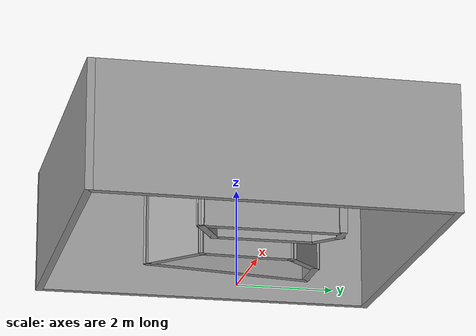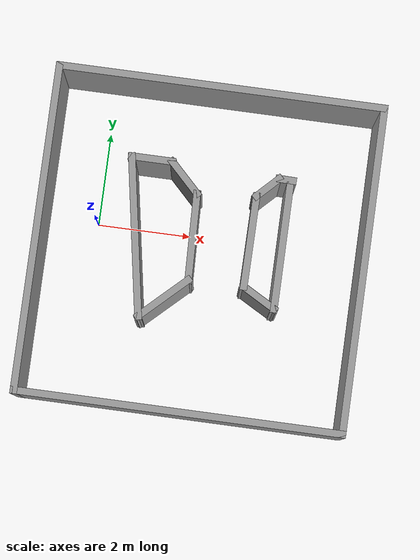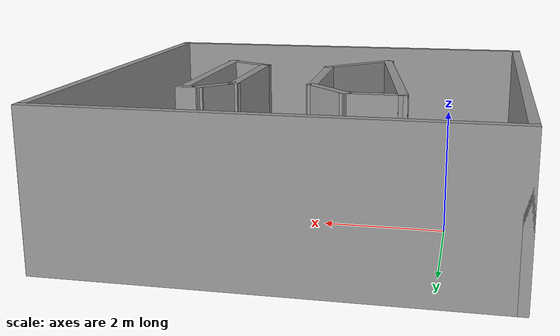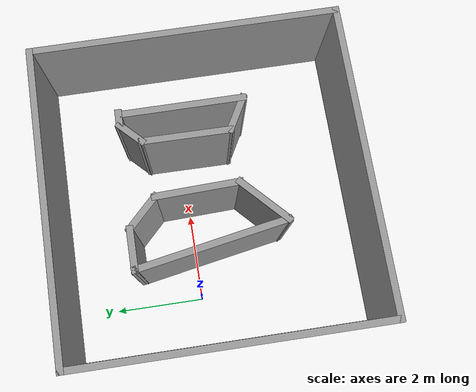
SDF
<?xml version='1.0'?>
<sdf version='1.7'>
  <model name='like_maze_map10'>
    <pose>2.285 -0.445 0 0 -0 0</pose>
    <link name='Wall_0'>
      <collision name='Wall_0_Collision'>
        <geometry>
          <box>
            <size>7 0.15 2.5</size>
          </box>
        </geometry>
        <pose>0 0 1.25 0 -0 0</pose>
      </collision>
      <visual name='Wall_0_Visual'>
        <pose>0 0 1.25 0 -0 0</pose>
        <geometry>
          <box>
            <size>7 0.15 2.5</size>
          </box>
        </geometry>
        <material>
          <script>
            <uri>file://media/materials/scripts/gazebo.material</uri>
            <name>Gazebo/Grey</name>
          </script>
          <ambient>1 1 1 1</ambient>
        </material>
        <meta>
          <layer>0</layer>
        </meta>
      </visual>
      <pose>-3.425 -0 0 0 -0 -1.5708</pose>
    </link>
    <link name='Wall_2'>
      <collision name='Wall_2_Collision'>
        <geometry>
          <box>
            <size>7 0.15 2.5</size>
          </box>
        </geometry>
        <pose>0 0 1.25 0 -0 0</pose>
      </collision>
      <visual name='Wall_2_Visual'>
        <pose>0 0 1.25 0 -0 0</pose>
        <geometry>
          <box>
            <size>7 0.15 2.5</size>
          </box>
        </geometry>
        <material>
          <script>
            <uri>file://media/materials/scripts/gazebo.material</uri>
            <name>Gazebo/Grey</name>
          </script>
          <ambient>1 1 1 1</ambient>
        </material>
        <meta>
          <layer>0</layer>
        </meta>
      </visual>
      <pose>0 3.425 0 0 -0 0</pose>
    </link>
    <link name='Wall_3'>
      <collision name='Wall_3_Collision'>
        <geometry>
          <box>
            <size>7 0.15 2.5</size>
          </box>
        </geometry>
        <pose>0 0 1.25 0 -0 0</pose>
      </collision>
      <visual name='Wall_3_Visual'>
        <pose>0 0 1.25 0 -0 0</pose>
        <geometry>
          <box>
            <size>7 0.15 2.5</size>
          </box>
        </geometry>
        <material>
          <script>
            <uri>file://media/materials/scripts/gazebo.material</uri>
            <name>Gazebo/Grey</name>
          </script>
          <ambient>1 1 1 1</ambient>
        </material>
        <meta>
          <layer>0</layer>
        </meta>
      </visual>
      <pose>3.425 -0 0 0 -0 -1.5708</pose>
    </link>
    <link name='Wall_31'>
      <collision name='Wall_31_Collision'>
        <geometry>
          <box>
            <size>0.928974 0.15 2.5</size>
          </box>
        </geometry>
        <pose>0 0 1.25 0 -0 0</pose>
      </collision>
      <visual name='Wall_31_Visual'>
        <pose>0 0 1.25 0 -0 0</pose>
        <geometry>
          <box>
            <size>0.928974 0.15 2.5</size>
          </box>
        </geometry>
        <material>
          <script>
            <uri>file://media/materials/scripts/gazebo.material</uri>
            <name>Gazebo/Grey</name>
          </script>
          <ambient>1 1 1 1</ambient>
        </material>
        <meta>
          <layer>0</layer>
        </meta>
      </visual>
      <pose>1.345 -0.855 0 0 -0 2.632</pose>
    </link>
    <link name='Wall_33'>
      <collision name='Wall_33_Collision'>
        <geometry>
          <box>
            <size>1.43035 0.15 2.5</size>
          </box>
        </geometry>
        <pose>0 0 1.25 0 -0 0</pose>
      </collision>
      <visual name='Wall_33_Visual'>
        <pose>0 0 1.25 0 -0 0</pose>
        <geometry>
          <box>
            <size>1.43035 0.15 2.5</size>
          </box>
        </geometry>
        <material>
          <script>
            <uri>file://media/materials/scripts/gazebo.material</uri>
            <name>Gazebo/Grey</name>
          </script>
          <ambient>1 1 1 1</ambient>
        </material>
        <meta>
          <layer>0</layer>
        </meta>
      </visual>
      <pose>-0.62 -1.125 0 0 -0 -2.38381</pose>
    </link>
    <link name='Wall_35'>
      <collision name='Wall_35_Collision'>
        <geometry>
          <box>
            <size>3.49073 0.15 2.5</size>
          </box>
        </geometry>
        <pose>0 0 1.25 0 -0 0</pose>
      </collision>
      <visual name='Wall_35_Visual'>
        <pose>0 0 1.25 0 -0 0</pose>
        <geometry>
          <box>
            <size>3.49073 0.15 2.5</size>
          </box>
        </geometry>
        <material>
          <script>
            <uri>file://media/materials/scripts/gazebo.material</uri>
            <name>Gazebo/Grey</name>
          </script>
          <ambient>1 1 1 1</ambient>
        </material>
        <meta>
          <layer>0</layer>
        </meta>
      </visual>
      <pose>-1.375 0.08 0 0 -0 -1.3963</pose>
    </link>
    <link name='Wall_4'>
      <collision name='Wall_4_Collision'>
        <geometry>
          <box>
            <size>7 0.15 2.5</size>
          </box>
        </geometry>
        <pose>0 0 1.25 0 -0 0</pose>
      </collision>
      <visual name='Wall_4_Visual'>
        <pose>0 0 1.25 0 -0 0</pose>
        <geometry>
          <box>
            <size>7 0.15 2.5</size>
          </box>
        </geometry>
        <material>
          <script>
            <uri>file://media/materials/scripts/gazebo.material</uri>
            <name>Gazebo/Grey</name>
          </script>
          <ambient>1 1 1 1</ambient>
        </material>
        <meta>
          <layer>0</layer>
        </meta>
      </visual>
      <pose>0 -3.425 0 0 -0 3.14159</pose>
    </link>
    <link name='Wall_44'>
      <collision name='Wall_44_Collision'>
        <geometry>
          <box>
            <size>1 0.15 2.5</size>
          </box>
        </geometry>
        <pose>0 0 1.25 0 -0 0</pose>
      </collision>
      <visual name='Wall_44_Visual'>
        <pose>0 0 1.25 0 -0 0</pose>
        <geometry>
          <box>
            <size>1 0.15 2.5</size>
          </box>
        </geometry>
        <material>
          <script>
            <uri>file://media/materials/scripts/gazebo.material</uri>
            <name>Gazebo/Grey</name>
          </script>
          <ambient>1 1 1 1</ambient>
        </material>
        <meta>
          <layer>0</layer>
        </meta>
      </visual>
      <pose>-1.24 1.725 0 0 -0 0</pose>
    </link>
    <link name='Wall_45'>
      <collision name='Wall_45_Collision'>
        <geometry>
          <box>
            <size>1 0.15 2.5</size>
          </box>
        </geometry>
        <pose>0 0 1.25 0 -0 0</pose>
      </collision>
      <visual name='Wall_45_Visual'>
        <pose>0 0 1.25 0 -0 0</pose>
        <geometry>
          <box>
            <size>1 0.15 2.5</size>
          </box>
        </geometry>
        <material>
          <script>
            <uri>file://media/materials/scripts/gazebo.material</uri>
            <name>Gazebo/Grey</name>
          </script>
          <ambient>1 1 1 1</ambient>
        </material>
        <meta>
          <layer>0</layer>
        </meta>
      </visual>
      <pose>-0.51448 1.42448 0 0 -0 -0.785398</pose>
    </link>
    <link name='Wall_57'>
      <collision name='Wall_57_Collision'>
        <geometry>
          <box>
            <size>0.75 0.15 2.5</size>
          </box>
        </geometry>
        <pose>0 0 1.25 0 -0 0</pose>
      </collision>
      <visual name='Wall_57_Visual'>
        <pose>0 0 1.25 0 -0 0</pose>
        <geometry>
          <box>
            <size>0.75 0.15 2.5</size>
          </box>
        </geometry>
        <material>
          <script>
            <uri>file://media/materials/scripts/gazebo.material</uri>
            <name>Gazebo/Grey</name>
          </script>
          <ambient>1 1 1 1</ambient>
        </material>
        <meta>
          <layer>0</layer>
        </meta>
      </visual>
      <pose>1.23287 1.45287 0 0 -0 -2.35619</pose>
    </link>
    <link name='Wall_60'>
      <collision name='Wall_60_Collision'>
        <geometry>
          <box>
            <size>2.75 0.15 2.5</size>
          </box>
        </geometry>
        <pose>0 0 1.25 0 -0 0</pose>
      </collision>
      <visual name='Wall_60_Visual'>
        <pose>0 0 1.25 0 -0 0</pose>
        <geometry>
          <box>
            <size>2.75 0.15 2.5</size>
          </box>
        </geometry>
        <material>
          <script>
            <uri>file://media/materials/scripts/gazebo.material</uri>
            <name>Gazebo/Grey</name>
          </script>
          <ambient>1 1 1 1</ambient>
        </material>
        <meta>
          <layer>0</layer>
        </meta>
      </visual>
      <pose>1.685 0.255 0 0 -0 1.5708</pose>
    </link>
    <link name='Wall_62'>
      <collision name='Wall_62_Collision'>
        <geometry>
          <box>
            <size>0.434746 0.15 2.5</size>
          </box>
        </geometry>
        <pose>0 0 1.25 0 -0 0</pose>
      </collision>
      <visual name='Wall_62_Visual'>
        <pose>0 0 1.25 0 -0 0</pose>
        <geometry>
          <box>
            <size>0.434746 0.15 2.5</size>
          </box>
        </geometry>
        <material>
          <script>
            <uri>file://media/materials/scripts/gazebo.material</uri>
            <name>Gazebo/Grey</name>
          </script>
          <ambient>1 1 1 1</ambient>
        </material>
        <meta>
          <layer>0</layer>
        </meta>
      </visual>
      <pose>1.58735 1.66256 0 0 -0 -0.017107</pose>
    </link>
    <link name='Wall_64'>
      <collision name='Wall_64_Collision'>
        <geometry>
          <box>
            <size>1.95992 0.15 2.5</size>
          </box>
        </geometry>
        <pose>0 0 1.25 0 -0 0</pose>
      </collision>
      <visual name='Wall_64_Visual'>
        <pose>0 0 1.25 0 -0 0</pose>
        <geometry>
          <box>
            <size>1.95992 0.15 2.5</size>
          </box>
        </geometry>
        <material>
          <script>
            <uri>file://media/materials/scripts/gazebo.material</uri>
            <name>Gazebo/Grey</name>
          </script>
          <ambient>1 1 1 1</ambient>
        </material>
        <meta>
          <layer>0</layer>
        </meta>
      </visual>
      <pose>-0.18448 0.21948 0 0 -0 -1.53822</pose>
    </link>
    <link name='Wall_66'>
      <collision name='Wall_66_Collision'>
        <geometry>
          <box>
            <size>2.0558 0.15 2.5</size>
          </box>
        </geometry>
        <pose>0 0 1.25 0 -0 0</pose>
      </collision>
      <visual name='Wall_66_Visual'>
        <pose>0 0 1.25 0 -0 0</pose>
        <geometry>
          <box>
            <size>2.0558 0.15 2.5</size>
          </box>
        </geometry>
        <material>
          <script>
            <uri>file://media/materials/scripts/gazebo.material</uri>
            <name>Gazebo/Grey</name>
          </script>
          <ambient>1 1 1 1</ambient>
        </material>
        <meta>
          <layer>0</layer>
        </meta>
      </visual>
      <pose>1.01287 0.287868 0 0 -0 -1.57905</pose>
    </link>
    <static>1</static>
  </model>
</sdf>
